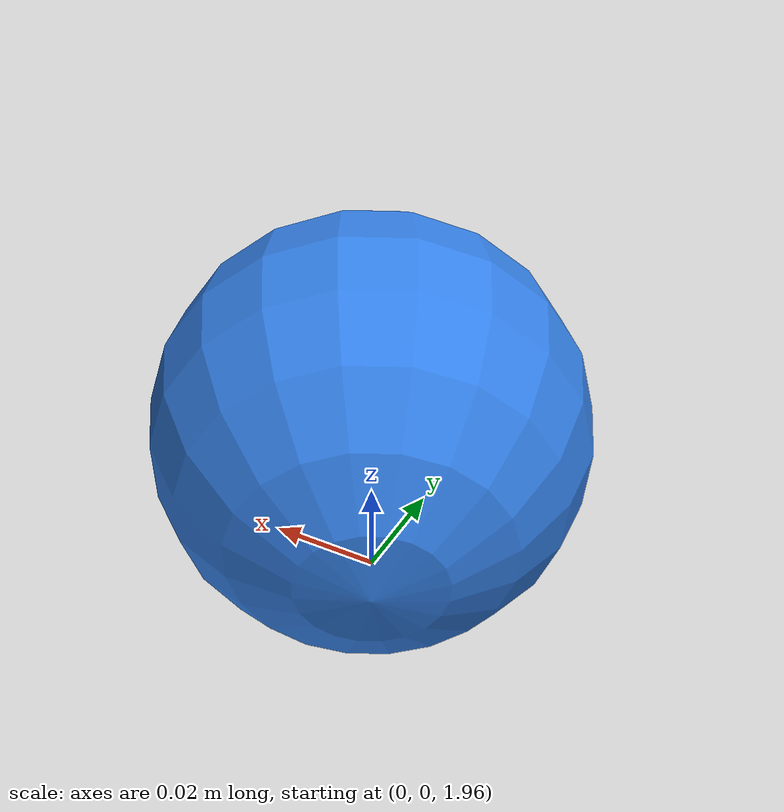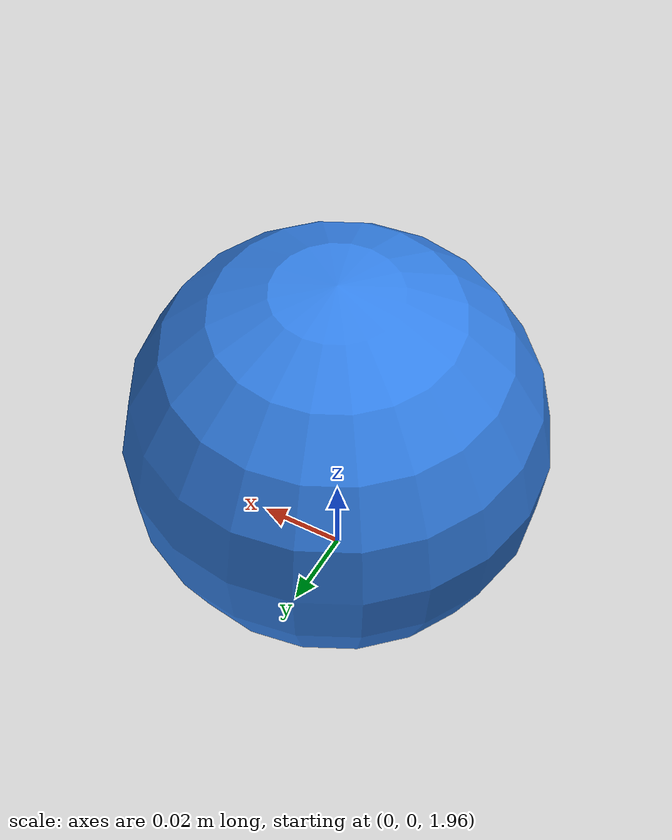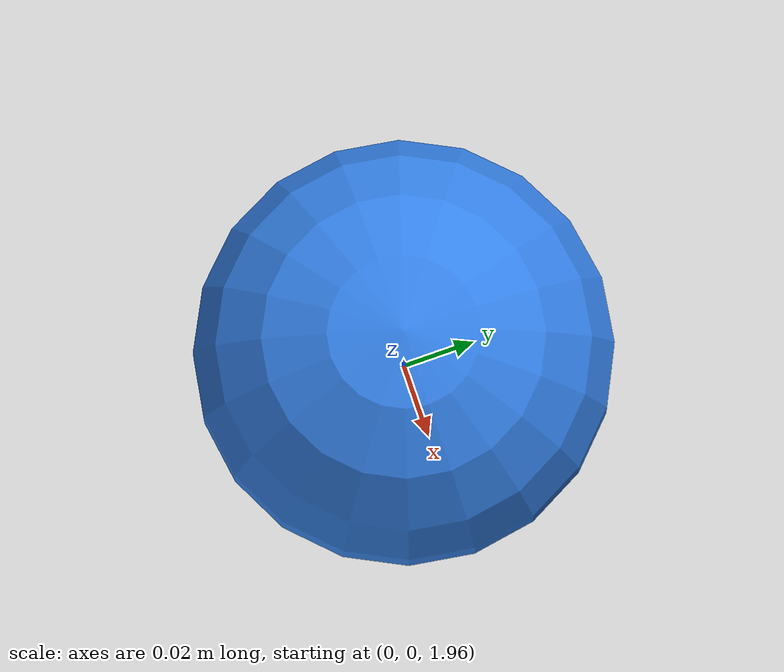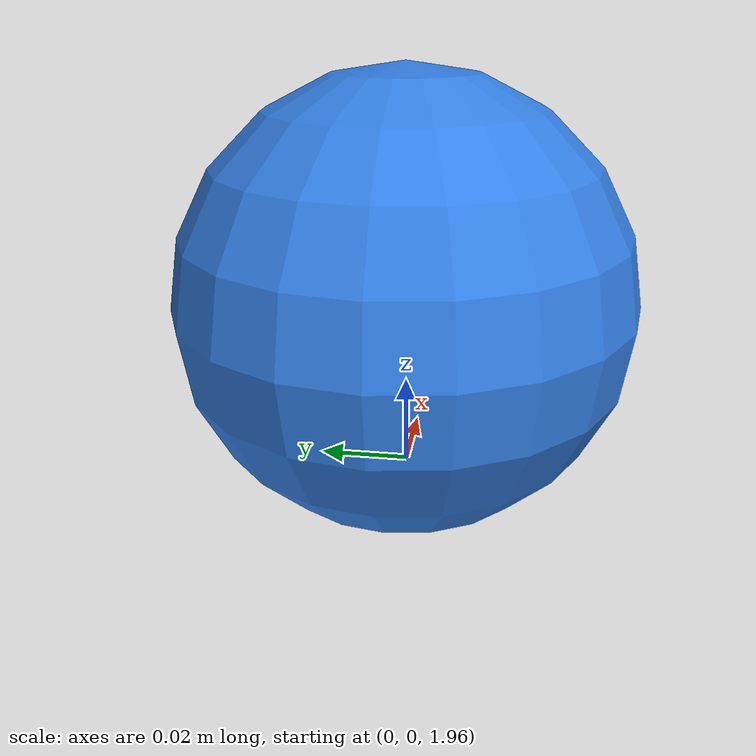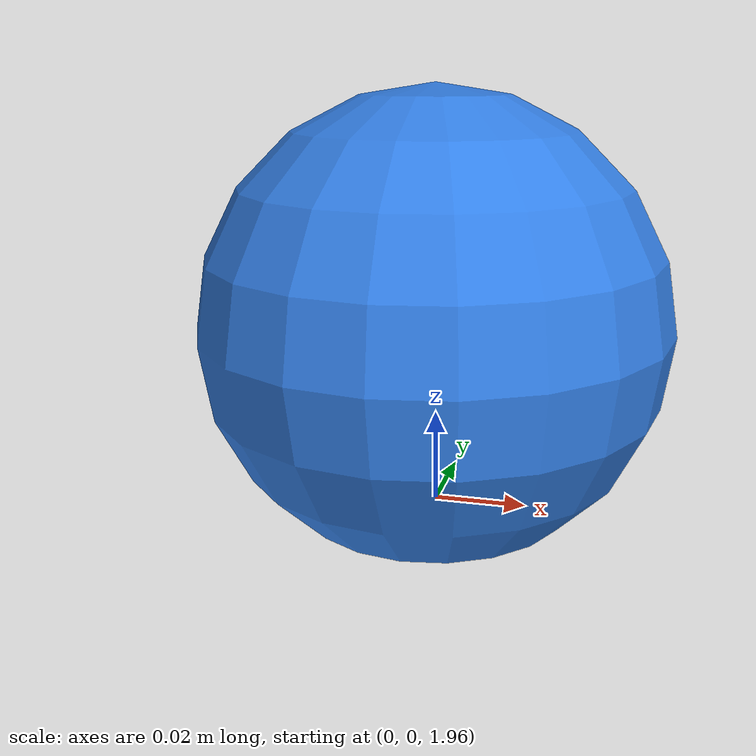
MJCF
<mujoco model="free fall">
  <!-- timestep 是仿真步长；gravity 设置为月球重力，z 方向为 -1.62 m/s^2。 -->
  <option timestep="0.002" gravity="0 0 -1.62"/>

  <!-- worldbody 是世界中的所有物体。 -->
  <worldbody>
    <!-- 灯光，方便 Viewer 中观察。 -->
    <light pos="0 0 2"/>

    <!-- 地面，type="plane" 表示无限平面。 -->
    <geom name="floor" type="plane" size="2 2 0.1" rgba="0.8 0.8 0.8 1"/>

    <!-- 小球 body，初始位置 z=2m。 -->
    <body name="ball" pos="0 0 2">
      <!-- freejoint 表示这个 body 可以在三维空间自由平移和旋转。 -->
      <freejoint/>

      <!-- 小球的形状、质量和颜色。 -->
      <geom name="ball_geom"
            type="sphere"
            size="0.05"
            mass="1"
            rgba="0.2 0.5 0.9 1"/>
    </body>
  </worldbody>
</mujoco>
